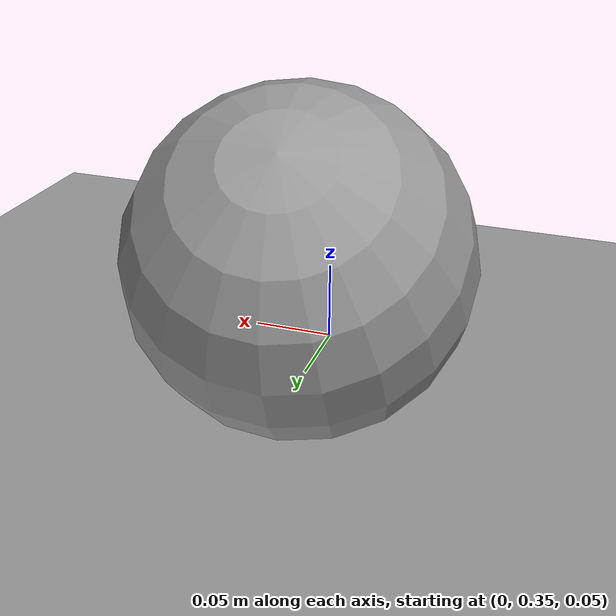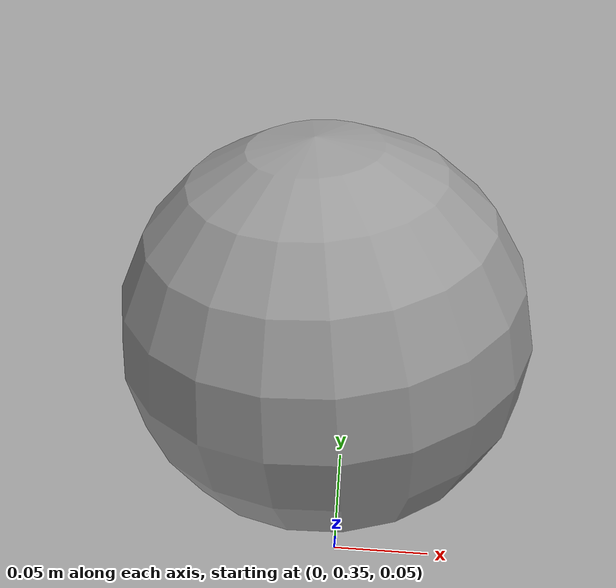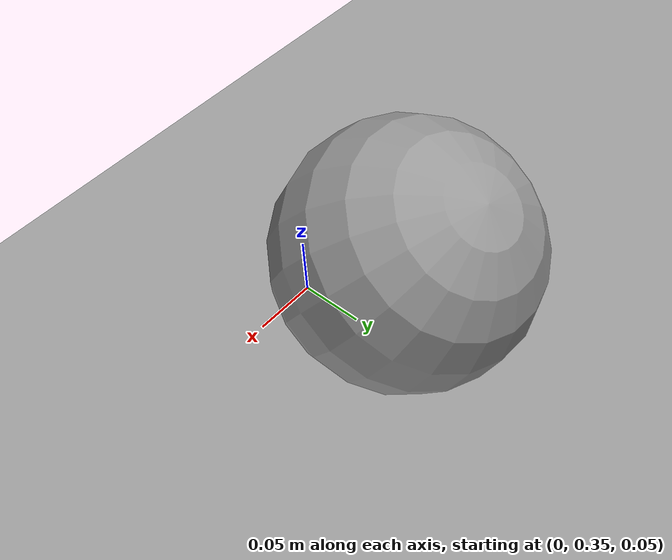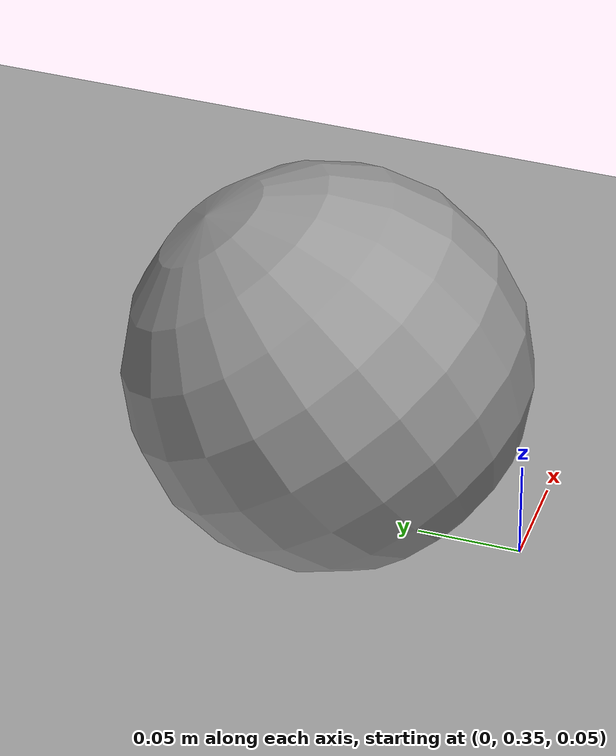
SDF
<sdf version="1.7">
 <world name="default">
  <light name="sun" type="directional">
   <pose>0 0 10 0 -0 0</pose>
   <diffuse>0.8 0.8 0.8 1</diffuse>
   <specular>0.2 0.2 0.2 1</specular>
   <attenuation>
    <range>1000</range>
    <constant>0.9</constant>
    <linear>0.01</linear>
    <quadratic>0.001</quadratic>
   </attenuation>
   <direction>-0.5 0.1 -0.9</direction>
   <spot><inner_angle>0</inner_angle><outer_angle>0</outer_angle><falloff>0</falloff></spot>
  </light>
  <model name="ground_plane">
   <static>1</static>
   <link name="link">
    <collision name="collision">
     <geometry><plane><normal>0 0 1</normal><size>100 100</size></plane></geometry>
     <surface>
      <contact><collide_bitmask>65535</collide_bitmask></contact>
      <friction><ode><mu>100</mu><mu2>50</mu2></ode></friction>
     </surface>
    </collision>
    <visual name="visual">
     <cast_shadows>0</cast_shadows>
     <geometry><plane><normal>0 0 1</normal><size>100 100</size></plane></geometry>
     <material>
      <script><uri>file://media/materials/scripts/gazebo.material</uri><name>Gazebo/Grey</name></script>
     </material>
    </visual>
   </link>
  </model>
  <gravity>0 0 -9.8</gravity>
  <magnetic_field>6e-06 2.3e-05 -4.2e-05</magnetic_field>
  <atmosphere type="adiabatic"/>
  <physics type="ode">
   <max_step_size>0.001</max_step_size>
   <real_time_factor>1</real_time_factor>
   <real_time_update_rate>1000</real_time_update_rate>
  </physics>
  <scene><ambient>0.4 0.4 0.4 1</ambient><background>0.7 0.7 0.7 1</background><shadows>1</shadows></scene>
  <spherical_coordinates>
   <surface_model>EARTH_WGS84</surface_model>
   <latitude_deg>0</latitude_deg>
   <longitude_deg>0</longitude_deg>
   <elevation>0</elevation>
   <heading_deg>0</heading_deg>
  </spherical_coordinates>
  <model name="unit_box">
   <pose>-0.17173 0.543382 0.024614 5e-06 8e-06 -0.011773</pose>
   <link name="link">
    <inertial>
     <mass>1</mass>
     <inertia>
      <ixx>0.166667</ixx>
      <ixy>0</ixy>
      <ixz>0</ixz>
      <iyy>0.166667</iyy>
      <iyz>0</iyz>
      <izz>0.166667</izz>
     </inertia>
    </inertial>
    <collision name="collision"><geometry><box><size>1 0.827551 0.0492638</size></box></geometry></collision>
    <visual name="visual">
     <geometry><box><size>1 0.827551 0.0492638</size></box></geometry>
     <material>
      <script><name>Gazebo/Grey</name><uri>file://media/materials/scripts/gazebo.material</uri></script>
     </material>
    </visual>
   </link>
  </model>
  <model name="unit_sphere">
   <pose>-0.010852 0.441959 0.145656 -0.628445 -0.006625 0.141073</pose>
   <link name="link">
    <inertial>
     <mass>1</mass>
     <inertia><ixx>0.1</ixx><ixy>0</ixy><ixz>0</ixz><iyy>0.1</iyy><iyz>0</iyz><izz>0.1</izz></inertia>
    </inertial>
    <collision name="collision"><geometry><sphere><radius>0.0964118</radius></sphere></geometry></collision>
    <visual name="visual">
     <geometry><sphere><radius>0.0964118</radius></sphere></geometry>
     <material>
      <script><name>Gazebo/Grey</name><uri>file://media/materials/scripts/gazebo.material</uri></script>
     </material>
    </visual>
   </link>
  </model>
 </world>
</sdf>
